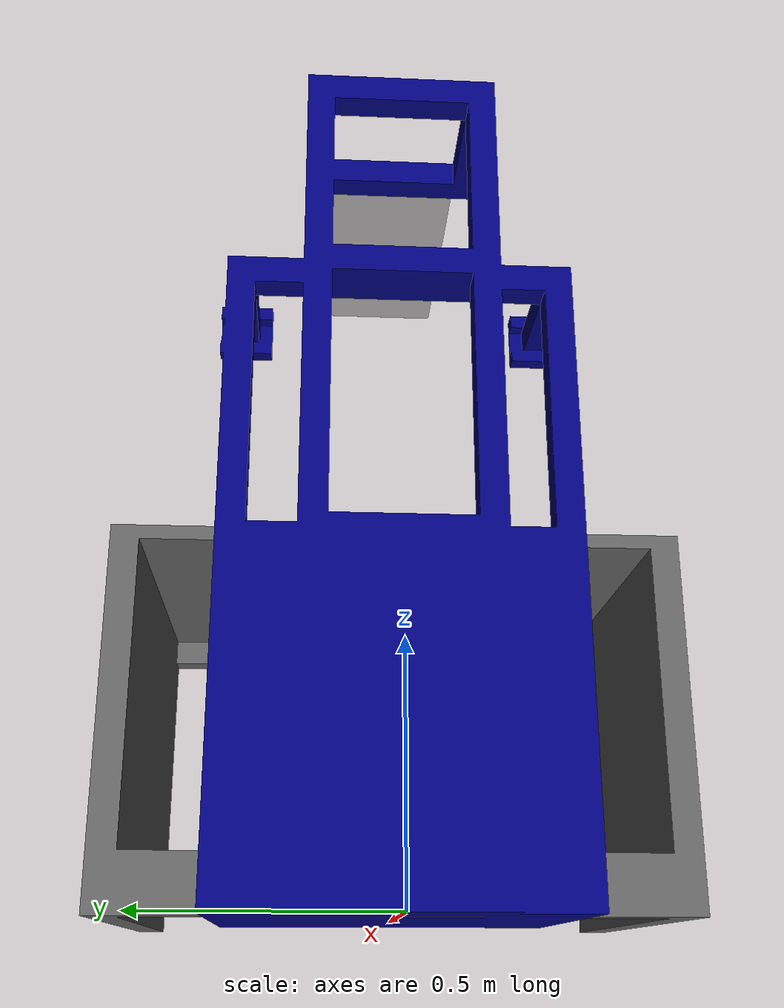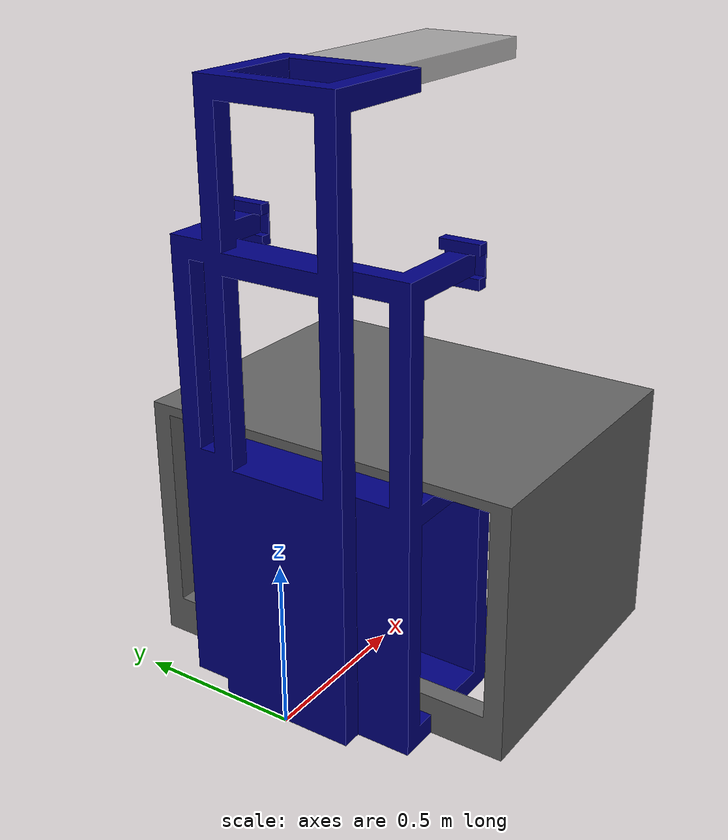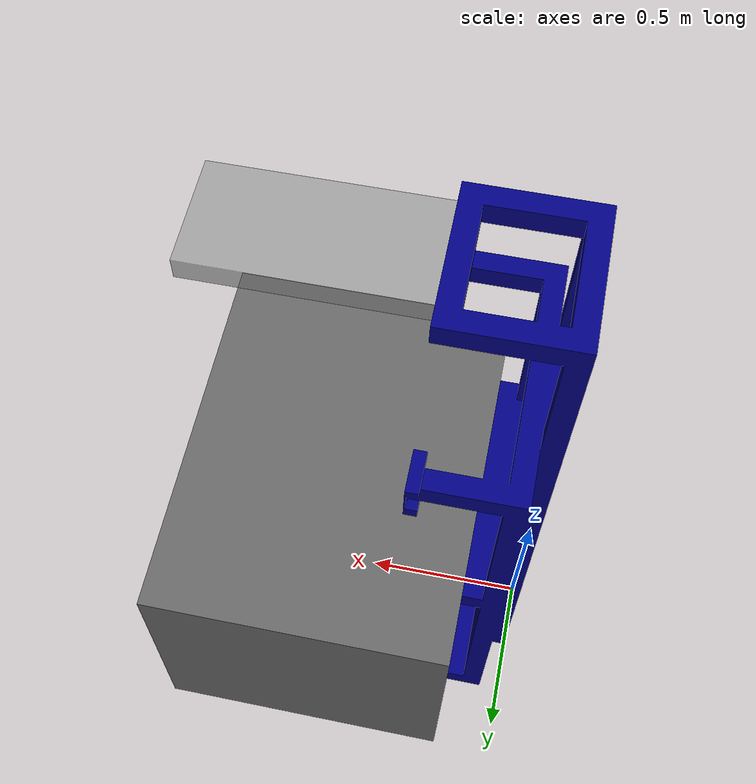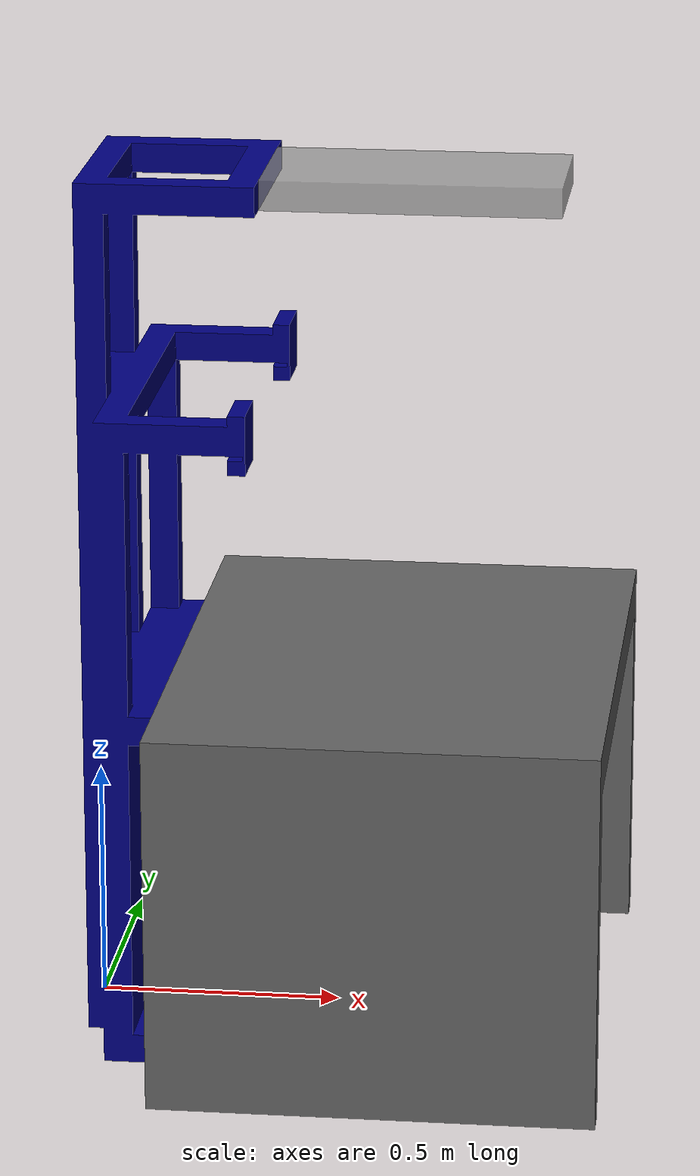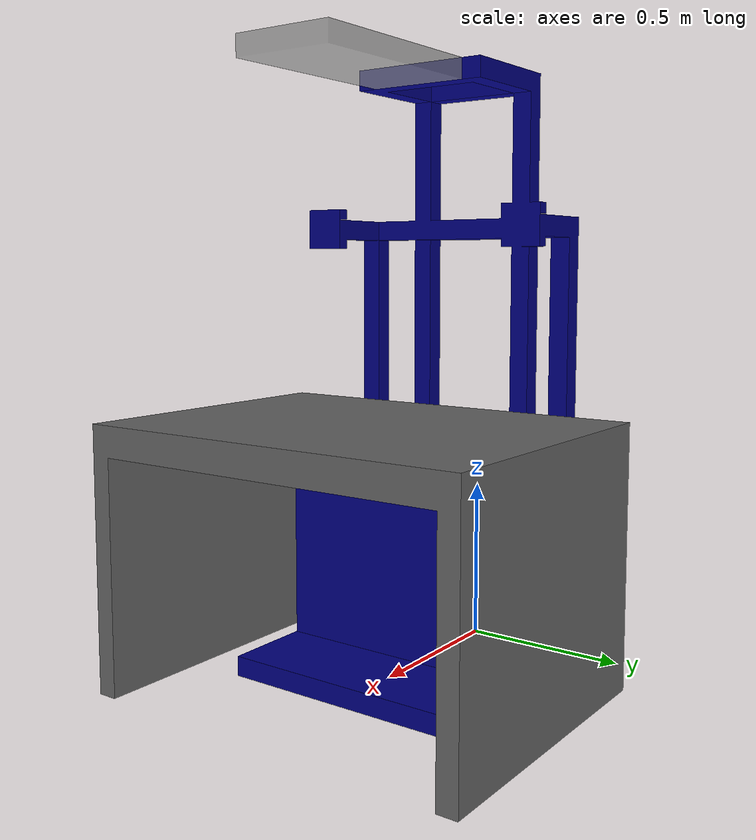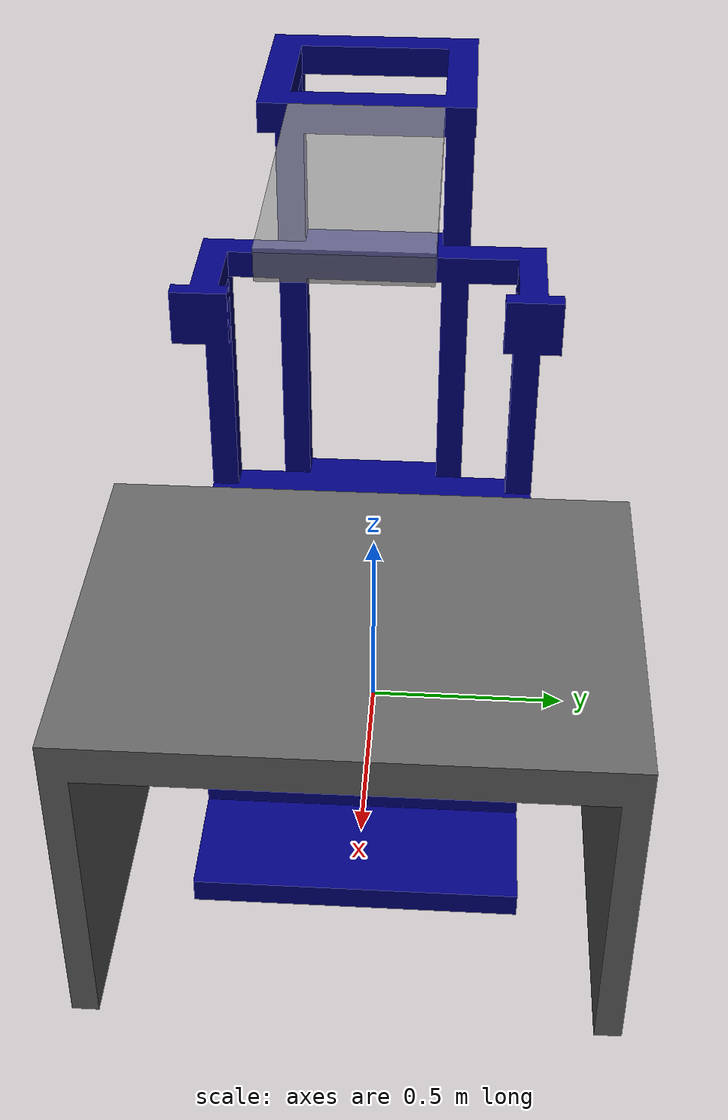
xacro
<?xml version="1.0"?>
  <!--  Author: Cristian Beltran -->

<!-- This macro adds a convenient TF frame at the tip of the closed gripper. -->
<!-- The position of the TF frame has not been measured at all and needs to be calibrated. -->

<robot name="ur3e_dual_workspace"
  xmlns:xacro="http://www.ros.org/wiki/xacro">

  <link name="workspace_body">
    <visual>
      <geometry>
        <mesh filename="package://ur3e_dual_description/meshes/ur3e_dual_body.stl" />
      </geometry>
      <material name="blue_transparent">
        <color rgba="${0/255} ${0/255} ${128/255} 0.9"/>
      </material>
    </visual>
    <collision>
      <geometry>
        <mesh filename="package://ur3e_dual_description/meshes/ur3e_dual_body.stl" />
      </geometry>
    </collision>
    <inertial>
      <origin xyz="0.401616 -0.000430 0.525458" rpy="0 0 0" />
      <mass value="10.0" />
      <inertia ixx="0.054454" ixy="-0.000007" ixz="0.005301" iyy="0.034120" iyz="0.000009" izz="0.046806"/>
    </inertial>
  </link>
  <link name="workspace_table">
    <visual>
      <geometry>
        <mesh filename="package://ur3e_dual_description/meshes/ur3e_table.stl" />
      </geometry>
      <material name="dark_gray">
        <color rgba="${100/255} ${100/255} ${100/255} 1.0"/>
      </material>
    </visual>
    <collision>
      <geometry>
        <mesh filename="package://ur3e_dual_description/meshes/ur3e_table.stl" />
      </geometry>
    </collision>
    <inertial>
      <origin xyz="0.401616 -0.000430 0.525458" rpy="0 0 0" />
      <mass value="10.0" />
      <inertia ixx="0.054454" ixy="-0.000007" ixz="0.005301" iyy="0.034120" iyz="0.000009" izz="0.046806"/>
    </inertial>
  </link>
  <link name="workspace_camera_support">
    <visual>
      <origin xyz="0.3 0.0 0.03" rpy="0 0 0"/>
      <geometry>
        <box size="0.6 0.3 0.06"/>
      </geometry>
      <material name="transparent">
        <color rgba="${150/255} ${150/255} ${150/255} 0.7"/>
      </material>
    </visual>
    <collision>
      <origin xyz="0.3 0.0 0.03" rpy="0 0 0"/>
      <geometry>
        <box size="0.6 0.3 0.06"/>
      </geometry>
    </collision>
    <inertial>
      <mass value="2.0" />
      <origin xyz="0.0 0.0 0.0" />
      <inertia ixx = "1.0" ixy = "0.000000" ixz = "0.000000"
             iyx = "0.000000" iyy = "1.0" iyz = "0.000000"
             izx = "0.000000" izy = "0.000000" izz = "1.0" />
    </inertial>
  </link>

  <joint name="workspace_body_table_joint" type="fixed">
    <parent link="workspace_body" />
    <child link="workspace_table" />
    <origin xyz="0.18 0.0 0.0" rpy="0.0 0.0 0.0" />
  </joint>

  <joint name="workspace_body_camera_support_joint" type="fixed">
    <parent link="workspace_body" />
    <child link="workspace_camera_support" />
    <origin xyz="0.36 0.0 1.74" rpy="0 0.0 0" />
  </joint>

  <gazebo reference="workspace_body">
    <mu1>0.9</mu1>
    <mu2>0.9</mu2>
    <material>Gazebo/GreyTransparent</material>
  </gazebo>
  <gazebo reference="workspace_table">
    <mu1>0.9</mu1>
    <mu2>0.9</mu2>
    <material>Gazebo/DarkGrey</material>
  </gazebo>
  <gazebo reference="workspace_tool_holder">
    <mu1>0.9</mu1>
    <mu2>0.9</mu2>
    <material>Gazebo/GreyTransparent</material>
  </gazebo>
  <gazebo reference="workspace_camera_support">
    <mu1>0.9</mu1>
    <mu2>0.9</mu2>
    <material>Gazebo/GreyTransparent</material>
  </gazebo>
</robot>
